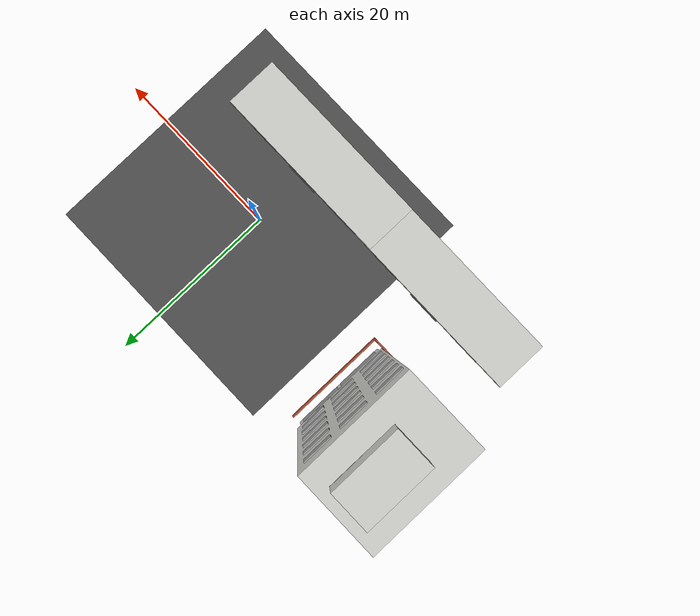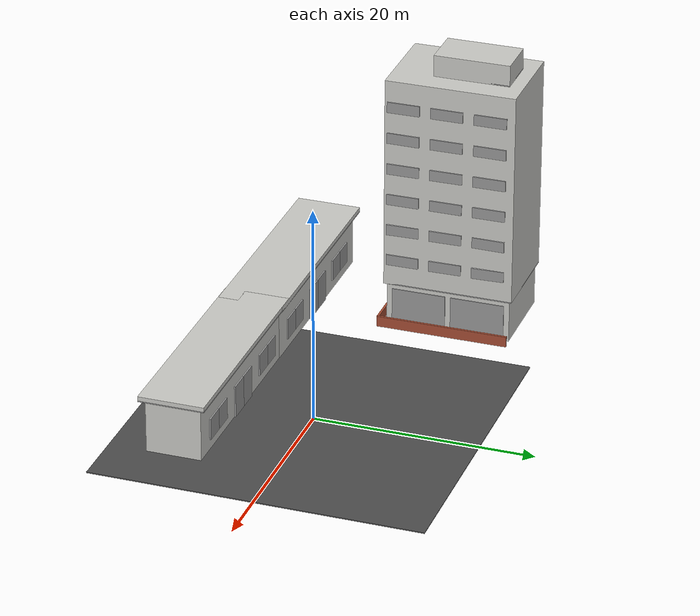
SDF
<sdf version="1.6">
 <world name="default">
  <model name="asphalt_plane">
   <pose>0.012562 0.029805 0 0 -0 0</pose>
   <static>1</static>
   <link name="link">
    <collision name="collision"><geometry><box><size>30 30.0001 0.1</size></box></geometry></collision>
    <visual name="visual">
     <cast_shadows>0</cast_shadows>
     <geometry><box><size>30 30.0001 0.1</size></box></geometry>
     <material>
      <script>
       <uri>model://asphalt_plane/materials/scripts</uri>
       <uri>model://asphalt_plane/materials/textures</uri>
       <name>vrc/asphalt</name>
      </script>
     </material>
    </visual>
   </link>
  </model>
  <model name="j_building">
   <pose>0.044289 -9.00814 0 0 -0 0</pose>
   <link name="Door_2">
    <collision name="Door_2_Collision">
     <geometry><box><size>2 0.17 3</size></box></geometry>
     <pose>0 0 1.5 0 -0 0</pose>
    </collision>
    <visual name="Door_2_Visual">
     <pose>0 0 1.5 0 -0 0</pose>
     <geometry><box><size>2 0.17 3</size></box></geometry>
     <material>
      <script><uri>file://media/materials/scripts/gazebo.material</uri><name>Gazebo/Grey</name></script>
     </material>
    </visual>
    <pose>-1 2.55 0 0 -0 3.13771</pose>
   </link>
   <link name="Door_3">
    <collision name="Door_3_Collision">
     <geometry><box><size>2 0.17 3</size></box></geometry>
     <pose>0 0 1.5 0 -0 0</pose>
    </collision>
    <visual name="Door_3_Visual">
     <pose>0 0 1.5 0 -0 0</pose>
     <geometry><box><size>2 0.17 3</size></box></geometry>
     <material>
      <script><uri>file://media/materials/scripts/gazebo.material</uri><name>Gazebo/Grey</name></script>
     </material>
    </visual>
    <pose>1 2.55 0 0 -0 3.13969</pose>
   </link>
   <link name="Floor_1">
    <collision name="Floor_1_Collision">
     <geometry><box><size>21 6 0.1</size></box></geometry>
     <pose>0 0 0.05 0 -0 0</pose>
    </collision>
    <visual name="Floor_1_Visual">
     <pose>0 0 0.05 0 -0 0</pose>
     <geometry><box><size>21 6 0.1</size></box></geometry>
     <material>
      <script><uri>file://media/materials/scripts/gazebo.material</uri><name>Gazebo/Grey</name></script>
      <ambient>1 1 1 1</ambient>
     </material>
    </visual>
    <pose>0 0 5 0 -0 0</pose>
   </link>
   <link name="Wall_10">
    <collision name="Wall_10_Collision">
     <geometry><box><size>21 6 0.5</size></box></geometry>
     <pose>0 0 0.25 0 -0 0</pose>
    </collision>
    <visual name="Wall_10_Visual">
     <pose>0 0 0.25 0 -0 0</pose>
     <geometry><box><size>21 6 0.5</size></box></geometry>
     <material>
      <script><uri>file://media/materials/scripts/gazebo.material</uri><name>Gazebo/CeilingTiled</name></script>
      <ambient>0.435294 0.796078 0.67451 1</ambient>
     </material>
    </visual>
    <pose>0 0 5 0 -0 0</pose>
   </link>
   <link name="Wall_7">
    <collision name="Wall_7_Collision">
     <geometry><box><size>20 5 5</size></box></geometry>
     <pose>0 0 2.5 0 -0 0</pose>
    </collision>
    <visual name="Wall_7_Visual">
     <pose>0 0 2.5 0 -0 0</pose>
     <geometry><box><size>20 5 5</size></box></geometry>
     <material>
      <script><uri>file://media/materials/scripts/gazebo.material</uri><name>Gazebo/CeilingTiled</name></script>
      <ambient>1 1 1 1</ambient>
     </material>
    </visual>
   </link>
   <link name="Window_6">
    <collision name="Window_6_Collision">
     <geometry><box><size>2 0.17 2</size></box></geometry>
     <pose>0 0 1 0 -0 0</pose>
    </collision>
    <visual name="Window_6_Visual">
     <pose>0 0 1 0 -0 0</pose>
     <geometry><box><size>2 0.17 2</size></box></geometry>
     <material>
      <script><uri>file://media/materials/scripts/gazebo.material</uri><name>Gazebo/Grey</name></script>
     </material>
    </visual>
    <pose>-7 2.55 1 0 -0 3.13833</pose>
   </link>
   <link name="Window_7">
    <collision name="Window_7_Collision">
     <geometry><box><size>2 0.17 2</size></box></geometry>
     <pose>0 0 1 0 -0 0</pose>
    </collision>
    <visual name="Window_7_Visual">
     <pose>0 0 1 0 -0 0</pose>
     <geometry><box><size>2 0.17 2</size></box></geometry>
     <material>
      <script><uri>file://media/materials/scripts/gazebo.material</uri><name>Gazebo/Grey</name></script>
     </material>
    </visual>
    <pose>-5 2.55 1 0 -0 3.14106</pose>
   </link>
   <link name="Window_8">
    <collision name="Window_8_Collision">
     <geometry><box><size>2 0.17 2</size></box></geometry>
     <pose>0 0 1 0 -0 0</pose>
    </collision>
    <visual name="Window_8_Visual">
     <pose>0 0 1 0 -0 0</pose>
     <geometry><box><size>2 0.17 2</size></box></geometry>
     <material>
      <script><uri>file://media/materials/scripts/gazebo.material</uri><name>Gazebo/Grey</name></script>
     </material>
    </visual>
    <pose>5 2.55 1 0 0 -3.13877</pose>
   </link>
   <link name="Window_9">
    <collision name="Window_9_Collision">
     <geometry><box><size>2 0.17 2</size></box></geometry>
     <pose>0 0 1 0 -0 0</pose>
    </collision>
    <visual name="Window_9_Visual">
     <pose>0 0 1 0 -0 0</pose>
     <geometry><box><size>2 0.17 2</size></box></geometry>
     <material>
      <script><uri>file://media/materials/scripts/gazebo.material</uri><name>Gazebo/Grey</name></script>
     </material>
    </visual>
    <pose>7 2.55 1 0 0 -3.13955</pose>
   </link>
   <static>1</static>
  </model>
  <model name="info_building">
   <pose>-22.5368 5.87118 0 0 -0 0</pose>
   <link name="Door_1">
    <collision name="Door_1_Collision">
     <geometry><box><size>5 0.17 3</size></box></geometry>
     <pose>0 0 1.5 0 -0 0</pose>
    </collision>
    <visual name="Door_1_Visual">
     <pose>0 0 1.5 0 -0 0</pose>
     <geometry><box><size>5 0.17 3</size></box></geometry>
     <material>
      <script><uri>file://media/materials/scripts/gazebo.material</uri><name>Gazebo/Grey</name></script>
     </material>
    </visual>
    <pose>3.575 -2.575 0.5 0 -0 1.56828</pose>
   </link>
   <link name="Door_2">
    <collision name="Door_2_Collision">
     <geometry><box><size>5 0.17 3</size></box></geometry>
     <pose>0 0 1.5 0 -0 0</pose>
    </collision>
    <visual name="Door_2_Visual">
     <pose>0 0 1.5 0 -0 0</pose>
     <geometry><box><size>5 0.17 3</size></box></geometry>
     <material>
      <script><uri>file://media/materials/scripts/gazebo.material</uri><name>Gazebo/Grey</name></script>
     </material>
    </visual>
    <pose>3.575 2.925 0.5 0 -0 1.5733</pose>
   </link>
   <link name="Floor_1">
    <collision name="Floor_1_Collision">
     <geometry><box><size>8.5 12 0.1</size></box></geometry>
     <pose>0 0 0.05 0 -0 0</pose>
    </collision>
    <visual name="Floor_1_Visual">
     <pose>0 0 0.05 0 -0 0</pose>
     <geometry><box><size>8.5 12 0.1</size></box></geometry>
     <material>
      <script><uri>file://media/materials/scripts/gazebo.material</uri><name>Gazebo/Grey</name></script>
      <ambient>1 1 1 1</ambient>
     </material>
    </visual>
    <pose>-0.425 0.174999 4 0 -0 0</pose>
   </link>
   <link name="Floor_2">
    <collision name="Floor_2_Collision">
     <geometry><box><size>4 7 0.1</size></box></geometry>
     <pose>0 0 0.05 0 -0 0</pose>
    </collision>
    <visual name="Floor_2_Visual">
     <pose>0 0 0.05 0 -0 0</pose>
     <geometry><box><size>4 7 0.1</size></box></geometry>
     <material>
      <script><uri>file://media/materials/scripts/gazebo.material</uri><name>Gazebo/Grey</name></script>
      <ambient>1 1 1 1</ambient>
     </material>
    </visual>
    <pose>-0.425 1.425 24 0 -0 0</pose>
   </link>
   <link name="Wall_11">
    <collision name="Wall_11_Collision">
     <geometry><box><size>12.2 0.2 1</size></box></geometry>
     <pose>0 0 0.5 0 -0 0</pose>
    </collision>
    <visual name="Wall_11_Visual">
     <pose>0 0 0.5 0 -0 0</pose>
     <geometry><box><size>12.2 0.2 1</size></box></geometry>
     <material>
      <script><uri>file://media/materials/scripts/gazebo.material</uri><name>Gazebo/Bricks</name></script>
      <ambient>1 1 1 1</ambient>
     </material>
    </visual>
    <pose>4.575 -0.075001 0 0 -0 1.5708</pose>
   </link>
   <link name="Wall_15">
    <collision name="Wall_15_Collision">
     <geometry><box><size>11.5 8 4</size></box></geometry>
     <pose>0 0 2 0 -0 0</pose>
    </collision>
    <visual name="Wall_15_Visual">
     <pose>0 0 2 0 -0 0</pose>
     <geometry><box><size>11.5 8 4</size></box></geometry>
     <material>
      <script><uri>file://media/materials/scripts/gazebo.material</uri><name>Gazebo/CeilingTiled</name></script>
      <ambient>0.231373 0.141176 0.0509804 1</ambient>
     </material>
    </visual>
    <pose>-0.425 0.174999 0 0 -0 1.5708</pose>
   </link>
   <link name="Wall_19">
    <collision name="Wall_19_Collision">
     <geometry><box><size>12 8.5 20</size></box></geometry>
     <pose>0 0 10 0 -0 0</pose>
    </collision>
    <visual name="Wall_19_Visual">
     <pose>0 0 10 0 -0 0</pose>
     <geometry><box><size>12 8.5 20</size></box></geometry>
     <material>
      <script><uri>file://media/materials/scripts/gazebo.material</uri><name>Gazebo/CeilingTiled</name></script>
      <ambient>0.505882 0.505882 0.505882 1</ambient>
     </material>
    </visual>
    <pose>-0.425 0.174999 4 0 -0 1.5708</pose>
   </link>
   <link name="Wall_20">
    <collision name="Wall_20_Collision">
     <geometry><box><size>7 4 2</size></box></geometry>
     <pose>0 0 1 0 -0 0</pose>
    </collision>
    <visual name="Wall_20_Visual">
     <pose>0 0 1 0 -0 0</pose>
     <geometry><box><size>7 4 2</size></box></geometry>
     <material>
      <script><uri>file://media/materials/scripts/gazebo.material</uri><name>Gazebo/CeilingTiled</name></script>
      <ambient>0.435294 0.796078 0.67451 1</ambient>
     </material>
    </visual>
    <pose>-0.425 1.425 24 0 -0 1.5708</pose>
   </link>
   <link name="Wall_9">
    <collision name="Wall_9_Collision">
     <geometry><box><size>9.2 0.2 1</size></box></geometry>
     <pose>0 0 0.5 0 -0 0</pose>
    </collision>
    <visual name="Wall_9_Visual">
     <pose>0 0 0.5 0 -0 0</pose>
     <geometry><box><size>9.2 0.2 1</size></box></geometry>
     <material>
      <script><uri>file://media/materials/scripts/gazebo.material</uri><name>Gazebo/Bricks</name></script>
      <ambient>1 1 1 1</ambient>
     </material>
    </visual>
    <pose>0.075 -6.075 0 0 -0 3.14159</pose>
   </link>
   <link name="Window_0">
    <collision name="Window_0_Collision">
     <geometry><box><size>3 0.17 1</size></box></geometry>
     <pose>0 0 0.5 0 -0 0</pose>
    </collision>
    <visual name="Window_0_Visual">
     <pose>0 0 0.5 0 -0 0</pose>
     <geometry><box><size>3 0.17 1</size></box></geometry>
     <material>
      <script><uri>file://media/materials/scripts/gazebo.material</uri><name>Gazebo/Grey</name></script>
     </material>
    </visual>
    <pose>3.875 -4.075 6 0 -0 1.57704</pose>
   </link>
   <link name="Window_11">
    <collision name="Window_11_Collision">
     <geometry><box><size>3 0.17 1</size></box></geometry>
     <pose>0 0 0.5 0 -0 0</pose>
    </collision>
    <visual name="Window_11_Visual">
     <pose>0 0 0.5 0 -0 0</pose>
     <geometry><box><size>3 0.17 1</size></box></geometry>
     <material>
      <script><uri>file://media/materials/scripts/gazebo.material</uri><name>Gazebo/Grey</name></script>
     </material>
    </visual>
    <pose>3.875 -4.075 15 0 -0 1.57983</pose>
   </link>
   <link name="Window_12">
    <collision name="Window_12_Collision">
     <geometry><box><size>3 0.17 1</size></box></geometry>
     <pose>0 0 0.5 0 -0 0</pose>
    </collision>
    <visual name="Window_12_Visual">
     <pose>0 0 0.5 0 -0 0</pose>
     <geometry><box><size>3 0.17 1</size></box></geometry>
     <material>
      <script><uri>file://media/materials/scripts/gazebo.material</uri><name>Gazebo/Grey</name></script>
     </material>
    </visual>
    <pose>3.875 -0.075001 15 0 -0 1.58105</pose>
   </link>
   <link name="Window_13">
    <collision name="Window_13_Collision">
     <geometry><box><size>3 0.17 1</size></box></geometry>
     <pose>0 0 0.5 0 -0 0</pose>
    </collision>
    <visual name="Window_13_Visual">
     <pose>0 0 0.5 0 -0 0</pose>
     <geometry><box><size>3 0.17 1</size></box></geometry>
     <material>
      <script><uri>file://media/materials/scripts/gazebo.material</uri><name>Gazebo/Grey</name></script>
     </material>
    </visual>
    <pose>3.875 3.925 15 0 -0 1.57717</pose>
   </link>
   <link name="Window_14">
    <collision name="Window_14_Collision">
     <geometry><box><size>3 0.17 1</size></box></geometry>
     <pose>0 0 0.5 0 -0 0</pose>
    </collision>
    <visual name="Window_14_Visual">
     <pose>0 0 0.5 0 -0 0</pose>
     <geometry><box><size>3 0.17 1</size></box></geometry>
     <material>
      <script><uri>file://media/materials/scripts/gazebo.material</uri><name>Gazebo/Grey</name></script>
     </material>
    </visual>
    <pose>3.875 -4.075 18 0 -0 1.55591</pose>
   </link>
   <link name="Window_15">
    <collision name="Window_15_Collision">
     <geometry><box><size>3 0.17 1</size></box></geometry>
     <pose>0 0 0.5 0 -0 0</pose>
    </collision>
    <visual name="Window_15_Visual">
     <pose>0 0 0.5 0 -0 0</pose>
     <geometry><box><size>3 0.17 1</size></box></geometry>
     <material>
      <script><uri>file://media/materials/scripts/gazebo.material</uri><name>Gazebo/Grey</name></script>
     </material>
    </visual>
    <pose>3.875 -0.075001 18 0 -0 1.57217</pose>
   </link>
   <link name="Window_16">
    <collision name="Window_16_Collision">
     <geometry><box><size>3 0.17 1</size></box></geometry>
     <pose>0 0 0.5 0 -0 0</pose>
    </collision>
    <visual name="Window_16_Visual">
     <pose>0 0 0.5 0 -0 0</pose>
     <geometry><box><size>3 0.17 1</size></box></geometry>
     <material>
      <script><uri>file://media/materials/scripts/gazebo.material</uri><name>Gazebo/Grey</name></script>
     </material>
    </visual>
    <pose>3.875 3.925 18 0 -0 1.56411</pose>
   </link>
   <link name="Window_17">
    <collision name="Window_17_Collision">
     <geometry><box><size>3 0.17 1</size></box></geometry>
     <pose>0 0 0.5 0 -0 0</pose>
    </collision>
    <visual name="Window_17_Visual">
     <pose>0 0 0.5 0 -0 0</pose>
     <geometry><box><size>3 0.17 1</size></box></geometry>
     <material>
      <script><uri>file://media/materials/scripts/gazebo.material</uri><name>Gazebo/Grey</name></script>
     </material>
    </visual>
    <pose>3.875 -4.075 21 0 -0 1.57699</pose>
   </link>
   <link name="Window_18">
    <collision name="Window_18_Collision">
     <geometry><box><size>3 0.17 1</size></box></geometry>
     <pose>0 0 0.5 0 -0 0</pose>
    </collision>
    <visual name="Window_18_Visual">
     <pose>0 0 0.5 0 -0 0</pose>
     <geometry><box><size>3 0.17 1</size></box></geometry>
     <material>
      <script><uri>file://media/materials/scripts/gazebo.material</uri><name>Gazebo/Grey</name></script>
     </material>
    </visual>
    <pose>3.875 -0.075001 21 0 -0 1.57095</pose>
   </link>
   <link name="Window_19">
    <collision name="Window_19_Collision">
     <geometry><box><size>3 0.17 1</size></box></geometry>
     <pose>0 0 0.5 0 -0 0</pose>
    </collision>
    <visual name="Window_19_Visual">
     <pose>0 0 0.5 0 -0 0</pose>
     <geometry><box><size>3 0.17 1</size></box></geometry>
     <material>
      <script><uri>file://media/materials/scripts/gazebo.material</uri><name>Gazebo/Grey</name></script>
     </material>
    </visual>
    <pose>3.875 3.925 21 0 -0 1.5708</pose>
   </link>
   <link name="Window_2">
    <collision name="Window_2_Collision">
     <geometry><box><size>3 0.17 1</size></box></geometry>
     <pose>0 0 0.5 0 -0 0</pose>
    </collision>
    <visual name="Window_2_Visual">
     <pose>0 0 0.5 0 -0 0</pose>
     <geometry><box><size>3 0.17 1</size></box></geometry>
     <material>
      <script><uri>file://media/materials/scripts/gazebo.material</uri><name>Gazebo/Grey</name></script>
     </material>
    </visual>
    <pose>3.875 -0.075001 6 0 -0 1.5855</pose>
   </link>
   <link name="Window_3">
    <collision name="Window_3_Collision">
     <geometry><box><size>3 0.17 1</size></box></geometry>
     <pose>0 0 0.5 0 -0 0</pose>
    </collision>
    <visual name="Window_3_Visual">
     <pose>0 0 0.5 0 -0 0</pose>
     <geometry><box><size>3 0.17 1</size></box></geometry>
     <material>
      <script><uri>file://media/materials/scripts/gazebo.material</uri><name>Gazebo/Grey</name></script>
     </material>
    </visual>
    <pose>3.875 3.925 6 0 -0 1.60806</pose>
   </link>
   <link name="Window_4">
    <collision name="Window_4_Collision">
     <geometry><box><size>3 0.17 1</size></box></geometry>
     <pose>0 0 0.5 0 -0 0</pose>
    </collision>
    <visual name="Window_4_Visual">
     <pose>0 0 0.5 0 -0 0</pose>
     <geometry><box><size>3 0.17 1</size></box></geometry>
     <material>
      <script><uri>file://media/materials/scripts/gazebo.material</uri><name>Gazebo/Grey</name></script>
     </material>
    </visual>
    <pose>3.875 -0.075001 9 0 -0 1.58223</pose>
   </link>
   <link name="Window_5">
    <collision name="Window_5_Collision">
     <geometry><box><size>3 0.17 1</size></box></geometry>
     <pose>0 0 0.5 0 -0 0</pose>
    </collision>
    <visual name="Window_5_Visual">
     <pose>0 0 0.5 0 -0 0</pose>
     <geometry><box><size>3 0.17 1</size></box></geometry>
     <material>
      <script><uri>file://media/materials/scripts/gazebo.material</uri><name>Gazebo/Grey</name></script>
     </material>
    </visual>
    <pose>3.875 -4.075 9 0 -0 1.60111</pose>
   </link>
   <link name="Window_6">
    <collision name="Window_6_Collision">
     <geometry><box><size>3 0.17 1</size></box></geometry>
     <pose>0 0 0.5 0 -0 0</pose>
    </collision>
    <visual name="Window_6_Visual">
     <pose>0 0 0.5 0 -0 0</pose>
     <geometry><box><size>3 0.17 1</size></box></geometry>
     <material>
      <script><uri>file://media/materials/scripts/gazebo.material</uri><name>Gazebo/Grey</name></script>
     </material>
    </visual>
    <pose>3.875 3.925 9 0 -0 1.55202</pose>
   </link>
   <link name="Window_7">
    <collision name="Window_7_Collision">
     <geometry><box><size>3 0.17 1</size></box></geometry>
     <pose>0 0 0.5 0 -0 0</pose>
    </collision>
    <visual name="Window_7_Visual">
     <pose>0 0 0.5 0 -0 0</pose>
     <geometry><box><size>3 0.17 1</size></box></geometry>
     <material>
      <script><uri>file://media/materials/scripts/gazebo.material</uri><name>Gazebo/Grey</name></script>
     </material>
    </visual>
    <pose>3.875 -4.075 12 0 -0 1.5708</pose>
   </link>
   <link name="Window_8">
    <collision name="Window_8_Collision">
     <geometry><box><size>3 0.17 1</size></box></geometry>
     <pose>0 0 0.5 0 -0 0</pose>
    </collision>
    <visual name="Window_8_Visual">
     <pose>0 0 0.5 0 -0 0</pose>
     <geometry><box><size>3 0.17 1</size></box></geometry>
     <material>
      <script><uri>file://media/materials/scripts/gazebo.material</uri><name>Gazebo/Grey</name></script>
     </material>
    </visual>
    <pose>3.875 -0.075001 12 0 -0 1.56933</pose>
   </link>
   <link name="Window_9">
    <collision name="Window_9_Collision">
     <geometry><box><size>3 0.17 1</size></box></geometry>
     <pose>0 0 0.5 0 -0 0</pose>
    </collision>
    <visual name="Window_9_Visual">
     <pose>0 0 0.5 0 -0 0</pose>
     <geometry><box><size>3 0.17 1</size></box></geometry>
     <material>
      <script><uri>file://media/materials/scripts/gazebo.material</uri><name>Gazebo/Grey</name></script>
     </material>
    </visual>
    <pose>3.875 3.925 12 0 -0 1.57549</pose>
   </link>
   <static>1</static>
  </model>
  <model name="j_building_clone">
   <pose>-19.1468 -8.97198 0 0 -0 0</pose>
   <link name="Door_2">
    <collision name="Door_2_Collision">
     <geometry><box><size>2 0.17 3</size></box></geometry>
     <pose>0 0 1.5 0 -0 0</pose>
    </collision>
    <visual name="Door_2_Visual">
     <pose>0 0 1.5 0 -0 0</pose>
     <geometry><box><size>2 0.17 3</size></box></geometry>
     <material>
      <script><uri>file://media/materials/scripts/gazebo.material</uri><name>Gazebo/Grey</name></script>
     </material>
    </visual>
    <pose>-1 2.55 0 0 -0 3.13771</pose>
   </link>
   <link name="Door_3">
    <collision name="Door_3_Collision">
     <geometry><box><size>2 0.17 3</size></box></geometry>
     <pose>0 0 1.5 0 -0 0</pose>
    </collision>
    <visual name="Door_3_Visual">
     <pose>0 0 1.5 0 -0 0</pose>
     <geometry><box><size>2 0.17 3</size></box></geometry>
     <material>
      <script><uri>file://media/materials/scripts/gazebo.material</uri><name>Gazebo/Grey</name></script>
     </material>
    </visual>
    <pose>1 2.55 0 0 -0 3.13969</pose>
   </link>
   <link name="Floor_1">
    <collision name="Floor_1_Collision">
     <geometry><box><size>21 6 0.1</size></box></geometry>
     <pose>0 0 0.05 0 -0 0</pose>
    </collision>
    <visual name="Floor_1_Visual">
     <pose>0 0 0.05 0 -0 0</pose>
     <geometry><box><size>21 6 0.1</size></box></geometry>
     <material>
      <script><uri>file://media/materials/scripts/gazebo.material</uri><name>Gazebo/Grey</name></script>
      <ambient>1 1 1 1</ambient>
     </material>
    </visual>
    <pose>0 0 5 0 -0 0</pose>
   </link>
   <link name="Wall_10">
    <collision name="Wall_10_Collision">
     <geometry><box><size>21 6 0.5</size></box></geometry>
     <pose>0 0 0.25 0 -0 0</pose>
    </collision>
    <visual name="Wall_10_Visual">
     <pose>0 0 0.25 0 -0 0</pose>
     <geometry><box><size>21 6 0.5</size></box></geometry>
     <material>
      <script><uri>file://media/materials/scripts/gazebo.material</uri><name>Gazebo/CeilingTiled</name></script>
      <ambient>0.435294 0.796078 0.67451 1</ambient>
     </material>
    </visual>
    <pose>0 0 5 0 -0 0</pose>
   </link>
   <link name="Wall_7">
    <collision name="Wall_7_Collision">
     <geometry><box><size>20 5 5</size></box></geometry>
     <pose>0 0 2.5 0 -0 0</pose>
    </collision>
    <visual name="Wall_7_Visual">
     <pose>0 0 2.5 0 -0 0</pose>
     <geometry><box><size>20 5 5</size></box></geometry>
     <material>
      <script><uri>file://media/materials/scripts/gazebo.material</uri><name>Gazebo/CeilingTiled</name></script>
      <ambient>1 1 1 1</ambient>
     </material>
    </visual>
   </link>
   <link name="Window_6">
    <collision name="Window_6_Collision">
     <geometry><box><size>2 0.17 2</size></box></geometry>
     <pose>0 0 1 0 -0 0</pose>
    </collision>
    <visual name="Window_6_Visual">
     <pose>0 0 1 0 -0 0</pose>
     <geometry><box><size>2 0.17 2</size></box></geometry>
     <material>
      <script><uri>file://media/materials/scripts/gazebo.material</uri><name>Gazebo/Grey</name></script>
     </material>
    </visual>
    <pose>-7 2.55 1 0 -0 3.13833</pose>
   </link>
   <link name="Window_7">
    <collision name="Window_7_Collision">
     <geometry><box><size>2 0.17 2</size></box></geometry>
     <pose>0 0 1 0 -0 0</pose>
    </collision>
    <visual name="Window_7_Visual">
     <pose>0 0 1 0 -0 0</pose>
     <geometry><box><size>2 0.17 2</size></box></geometry>
     <material>
      <script><uri>file://media/materials/scripts/gazebo.material</uri><name>Gazebo/Grey</name></script>
     </material>
    </visual>
    <pose>-5 2.55 1 0 -0 3.14106</pose>
   </link>
   <link name="Window_8">
    <collision name="Window_8_Collision">
     <geometry><box><size>2 0.17 2</size></box></geometry>
     <pose>0 0 1 0 -0 0</pose>
    </collision>
    <visual name="Window_8_Visual">
     <pose>0 0 1 0 -0 0</pose>
     <geometry><box><size>2 0.17 2</size></box></geometry>
     <material>
      <script><uri>file://media/materials/scripts/gazebo.material</uri><name>Gazebo/Grey</name></script>
     </material>
    </visual>
    <pose>5 2.55 1 0 0 -3.13877</pose>
   </link>
   <link name="Window_9">
    <collision name="Window_9_Collision">
     <geometry><box><size>2 0.17 2</size></box></geometry>
     <pose>0 0 1 0 -0 0</pose>
    </collision>
    <visual name="Window_9_Visual">
     <pose>0 0 1 0 -0 0</pose>
     <geometry><box><size>2 0.17 2</size></box></geometry>
     <material>
      <script><uri>file://media/materials/scripts/gazebo.material</uri><name>Gazebo/Grey</name></script>
     </material>
    </visual>
    <pose>7 2.55 1 0 0 -3.13955</pose>
   </link>
   <static>1</static>
  </model>
 </world>
</sdf>
